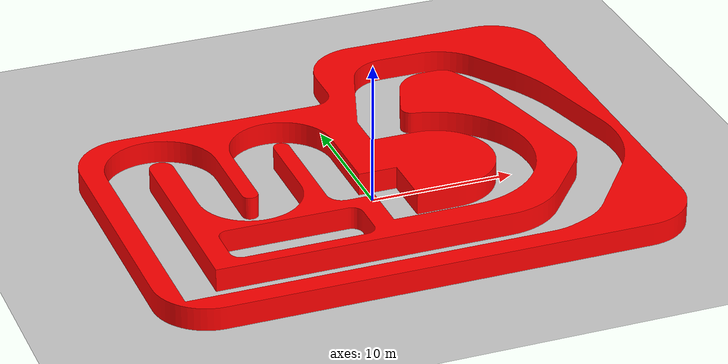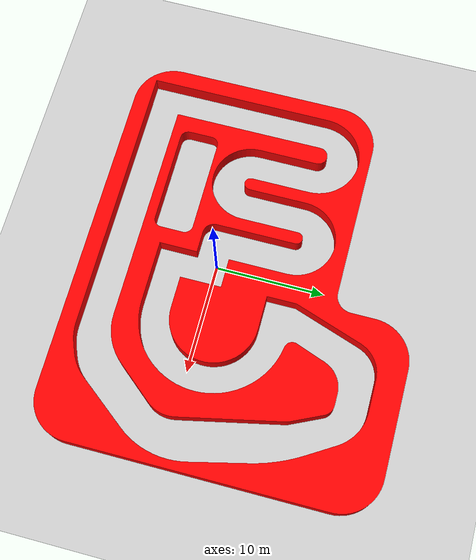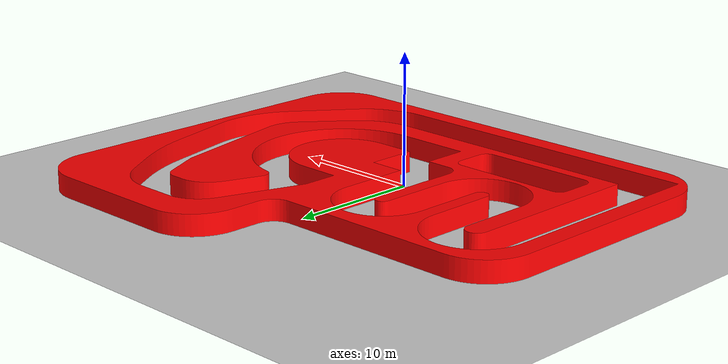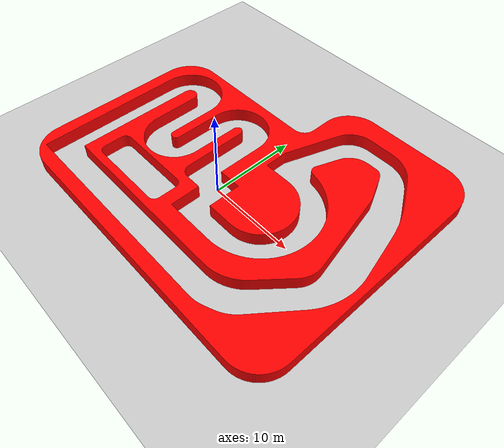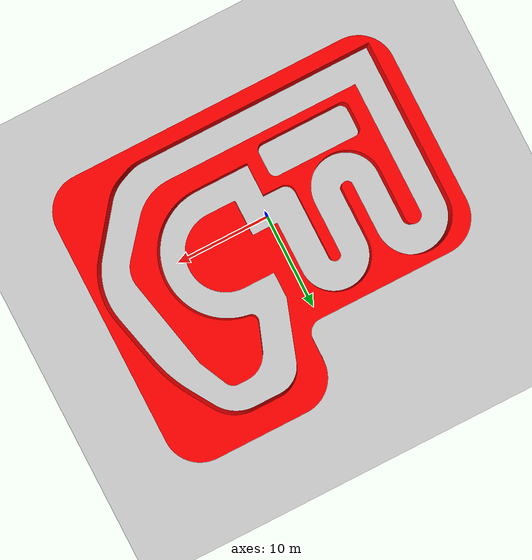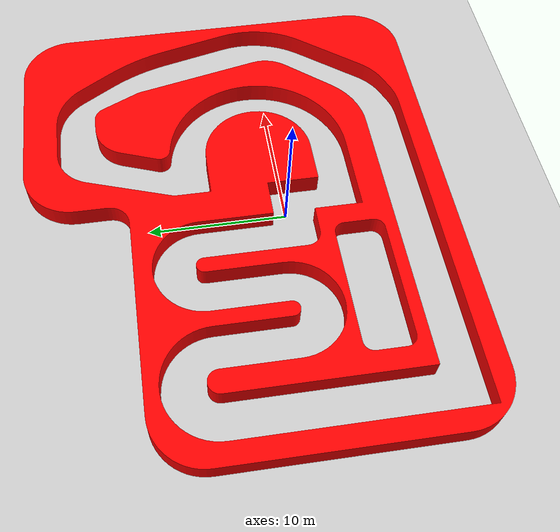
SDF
<?xml version="1.0" ?>
<sdf version="1.11">

  <world name="empty_world">
    <physics name='1ms' type='ignored'>
      <max_step_size>0.001</max_step_size>
      <real_time_factor>1</real_time_factor>
      <real_time_update_rate>1000</real_time_update_rate>
    </physics>
    <plugin name='gz::sim::systems::Physics' filename='gz-sim-physics-system'/>
    <plugin name='gz::sim::systems::Sensors' filename='gz-sim-sensors-system'>
      <render_engine>ogre2</render_engine>
    </plugin>
    <plugin name='gz::sim::systems::SceneBroadcaster' filename='gz-sim-scene-broadcaster-system'/>
    <plugin name='gz::sim::systems::UserCommands' filename='gz-sim-user-commands-system'/>
    <gravity>0 0 -9.8000000000000007</gravity>
    <magnetic_field>5.5644999999999998e-06 2.2875799999999999e-05 -4.2388400000000002e-05</magnetic_field>
    <atmosphere type='adiabatic'/>
    <scene>
      <ambient>0.400000006 0.400000006 0.400000006 1</ambient>
      <background>0.699999988 0.699999988 0.699999988 1</background>
      <shadows>true</shadows>
    </scene>

    <light type="directional" name="sun">
      <cast_shadows>true</cast_shadows>
      <pose>0 0 10 0 0 0</pose>
      <diffuse>0.8 0.8 0.8 1</diffuse>
      <specular>0.2 0.2 0.2 1</specular>
      <attenuation>
        <range>1000</range>
        <constant>0.9</constant>
        <linear>0.01</linear>
        <quadratic>0.001</quadratic>
      </attenuation>
      <direction>-0.5 0.1 -0.9</direction>
    </light>

    <model name="ground_plane">
      <static>true</static>
      <link name="link">
        <collision name="collision">
          <geometry>
            <plane>
              <normal>0 0 1</normal>
              <size>100 100</size>
            </plane>
          </geometry>
          <surface>
            <friction>
              <ode>
                <mu>1.0</mu>
                <mu2>1.0</mu2>
              </ode>
            </friction>
          </surface>
        </collision>

        <visual name="visual">
          <geometry>
            <plane>
              <normal>0 0 1</normal>
              <size>100 100</size>
            </plane>
          </geometry>
          <material>
            <ambient>0.8 0.8 0.8 1</ambient>
            <diffuse>0.8 0.8 0.8 1</diffuse>
            <specular>0.8 0.8 0.8 1</specular>
          </material>
        </visual>
      </link>
    </model>

        <model name='stl_maze'>
      <pose>0 0 0 0 0 0</pose>
      <static>true</static>
      <link name='link'>
        <collision name='maze_collision'>
          <geometry>
            <mesh>
              <uri>file:///home/juan-londono/Documents/mobileRobotics/mrad_ws_2602_Foxtrot/src/gazebo_2602_foxtrot/worlds/examen1_v2.stl</uri> #Chamge me
              <scale>.0015 .0015 .001</scale>
            </mesh>
          </geometry>
          <surface>
            <friction>
              <ode/>
            </friction>
            <bounce/>
            <contact/>
          </surface>
        </collision>
        <visual name='visual'>
          <geometry>
            <mesh>
              <uri>file:///home/juan-londono/Documents/mobileRobotics/mrad_ws_2602_Foxtrot/src/gazebo_2602_foxtrot/worlds/examen1_v2.stl</uri>   #Change me
              <scale>.0015 .0015 .001</scale>
            </mesh>
          </geometry>
          <material>
            <ambient>1 0 0 1</ambient>
            <diffuse>1 0 0 1</diffuse>
            <specular>1 0 0 1</specular>
          </material>
        </visual>
        <pose>0 0 0 0 0 0</pose>
        <inertial>
          <pose>0 0 0 0 0 0</pose>
          <mass>1</mass>
          <inertia>
            <ixx>1</ixx>
            <ixy>0</ixy>
            <ixz>0</ixz>
            <iyy>1</iyy>
            <iyz>0</iyz>
            <izz>1</izz>
          </inertia>
        </inertial>
        <enable_wind>false</enable_wind>
      </link>
      <self_collide>false</self_collide>
    </model>

  </world>
</sdf>
